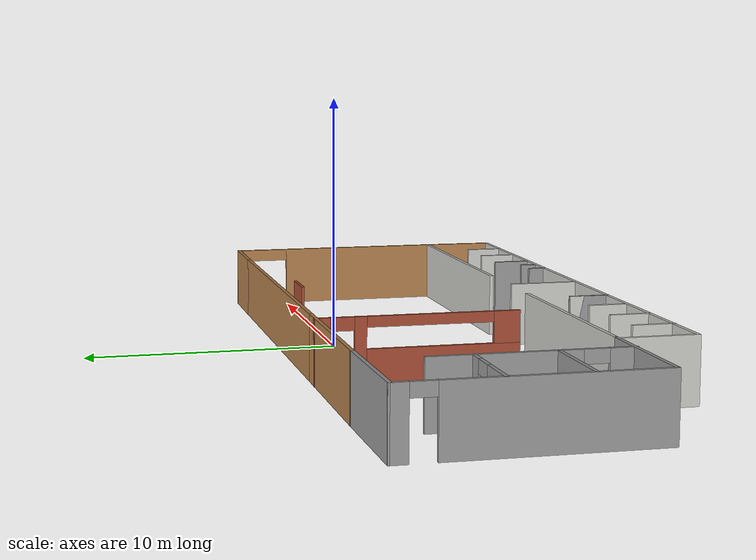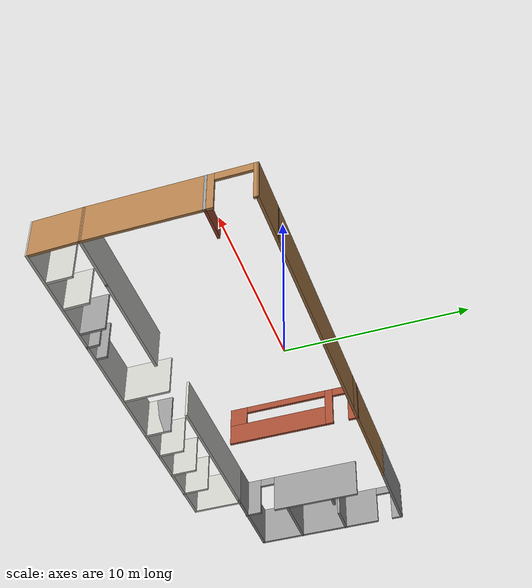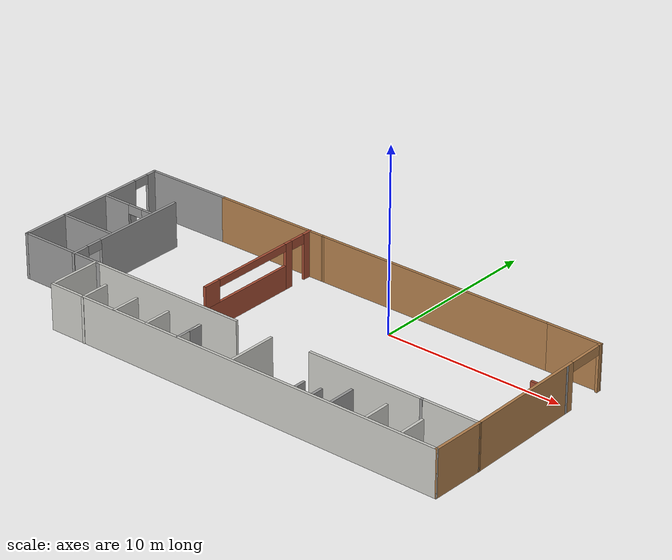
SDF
<?xml version='1.0'?>
<sdf version='1.6'>
  <model name='rest'>
    <pose frame=''>-3.19031 -3.86827 0 0 -0 0</pose>
    <link name='Wall_105'>
      <collision name='Wall_105_Collision'>
        <geometry>
          <box>
            <size>1.5 0.15 2.5</size>
          </box>
        </geometry>
        <pose frame=''>0 0 1.25 0 -0 0</pose>
      </collision>
      <visual name='Wall_105_Visual'>
        <pose frame=''>0 0 1.25 0 -0 0</pose>
        <geometry>
          <box>
            <size>1.5 0.15 2.5</size>
          </box>
        </geometry>
        <material>
          <script>
            <uri>file://media/materials/scripts/gazebo.material</uri>
            <name>Gazebo/CeilingTiled</name>
          </script>
          <ambient>1 1 1 1</ambient>
        </material>
        <meta>
          <layer>0</layer>
        </meta>
      </visual>
      <pose frame=''>9.84331 -5.22473 0 0 -0 1.5708</pose>
    </link>
    <link name='Wall_107'>
      <collision name='Wall_107_Collision'>
        <geometry>
          <box>
            <size>1.538 0.15 2.5</size>
          </box>
        </geometry>
        <pose frame=''>0 0 1.25 0 -0 0</pose>
      </collision>
      <visual name='Wall_107_Visual'>
        <pose frame=''>0 0 1.25 0 -0 0</pose>
        <geometry>
          <box>
            <size>1.538 0.15 2.5</size>
          </box>
        </geometry>
        <material>
          <script>
            <uri>file://media/materials/scripts/gazebo.material</uri>
            <name>Gazebo/CeilingTiled</name>
          </script>
          <ambient>1 1 1 1</ambient>
        </material>
        <meta>
          <layer>0</layer>
        </meta>
      </visual>
      <pose frame=''>11.8423 -5.24373 0 0 0 -1.5708</pose>
    </link>
    <link name='Wall_109'>
      <collision name='Wall_109_Collision'>
        <geometry>
          <box>
            <size>0.744777 0.15 2.5</size>
          </box>
        </geometry>
        <pose frame=''>0 0 1.25 0 -0 0</pose>
      </collision>
      <visual name='Wall_109_Visual'>
        <pose frame=''>0 0 1.25 0 -0 0</pose>
        <geometry>
          <box>
            <size>0.744777 0.15 2.5</size>
          </box>
        </geometry>
        <material>
          <script>
            <uri>file://media/materials/scripts/gazebo.material</uri>
            <name>Gazebo/Grey</name>
          </script>
          <ambient>1 1 1 1</ambient>
        </material>
        <meta>
          <layer>0</layer>
        </meta>
      </visual>
      <pose frame=''>6.76931 -5.68423 0 0 -0 1.5708</pose>
    </link>
    <link name='Wall_113'>
      <collision name='Wall_113_Collision'>
        <geometry>
          <box>
            <size>0.745 0.15 2.5</size>
          </box>
        </geometry>
        <pose frame=''>0 0 1.25 0 -0 0</pose>
      </collision>
      <visual name='Wall_113_Visual'>
        <pose frame=''>0 0 1.25 0 -0 0</pose>
        <geometry>
          <box>
            <size>0.745 0.15 2.5</size>
          </box>
        </geometry>
        <material>
          <script>
            <uri>file://media/materials/scripts/gazebo.material</uri>
            <name>Gazebo/Grey</name>
          </script>
          <ambient>1 1 1 1</ambient>
        </material>
        <meta>
          <layer>0</layer>
        </meta>
      </visual>
      <pose frame=''>5.76931 -5.68423 0 0 -0 1.5708</pose>
    </link>
    <link name='Wall_115'>
      <collision name='Wall_115_Collision'>
        <geometry>
          <box>
            <size>1.643 0.15 2.5</size>
          </box>
        </geometry>
        <pose frame=''>0 0 1.25 0 -0 0</pose>
      </collision>
      <visual name='Wall_115_Visual'>
        <pose frame=''>0 0 1.25 0 -0 0</pose>
        <geometry>
          <box>
            <size>1.643 0.15 2.5</size>
          </box>
        </geometry>
        <material>
          <script>
            <uri>file://media/materials/scripts/gazebo.material</uri>
            <name>Gazebo/CeilingTiled</name>
          </script>
          <ambient>1 1 1 1</ambient>
        </material>
        <meta>
          <layer>0</layer>
        </meta>
      </visual>
      <pose frame=''>-7.25669 -5.29623 0 0 0 -1.5708</pose>
    </link>
    <link name='Wall_117'>
      <collision name='Wall_117_Collision'>
        <geometry>
          <box>
            <size>1.59 0.15 2.5</size>
          </box>
        </geometry>
        <pose frame=''>0 0 1.25 0 -0 0</pose>
      </collision>
      <visual name='Wall_117_Visual'>
        <pose frame=''>0 0 1.25 0 -0 0</pose>
        <geometry>
          <box>
            <size>1.59 0.15 2.5</size>
          </box>
        </geometry>
        <material>
          <script>
            <uri>file://media/materials/scripts/gazebo.material</uri>
            <name>Gazebo/CeilingTiled</name>
          </script>
          <ambient>1 1 1 1</ambient>
        </material>
        <meta>
          <layer>0</layer>
        </meta>
      </visual>
      <pose frame=''>-5.25669 -5.26973 0 0 0 -1.5708</pose>
    </link>
    <link name='Wall_119'>
      <collision name='Wall_119_Collision'>
        <geometry>
          <box>
            <size>1.538 0.15 2.5</size>
          </box>
        </geometry>
        <pose frame=''>0 0 1.25 0 -0 0</pose>
      </collision>
      <visual name='Wall_119_Visual'>
        <pose frame=''>0 0 1.25 0 -0 0</pose>
        <geometry>
          <box>
            <size>1.538 0.15 2.5</size>
          </box>
        </geometry>
        <material>
          <script>
            <uri>file://media/materials/scripts/gazebo.material</uri>
            <name>Gazebo/CeilingTiled</name>
          </script>
          <ambient>1 1 1 1</ambient>
        </material>
        <meta>
          <layer>0</layer>
        </meta>
      </visual>
      <pose frame=''>-3.25669 -5.24373 0 0 0 -1.5708</pose>
    </link>
    <link name='Wall_121'>
      <collision name='Wall_121_Collision'>
        <geometry>
          <box>
            <size>1.59 0.15 2.5</size>
          </box>
        </geometry>
        <pose frame=''>0 0 1.25 0 -0 0</pose>
      </collision>
      <visual name='Wall_121_Visual'>
        <pose frame=''>0 0 1.25 0 -0 0</pose>
        <geometry>
          <box>
            <size>1.59 0.15 2.5</size>
          </box>
        </geometry>
        <material>
          <script>
            <uri>file://media/materials/scripts/gazebo.material</uri>
            <name>Gazebo/Grey</name>
          </script>
          <ambient>1 1 1 1</ambient>
        </material>
        <meta>
          <layer>0</layer>
        </meta>
      </visual>
      <pose frame=''>-1.25669 -5.26973 0 0 0 -1.5708</pose>
    </link>
    <link name='Wall_122'>
      <collision name='Wall_122_Collision'>
        <geometry>
          <box>
            <size>1.59 0.15 2.5</size>
          </box>
        </geometry>
        <pose frame=''>0 0 1.25 0 -0 0</pose>
      </collision>
      <visual name='Wall_122_Visual'>
        <pose frame=''>0 0 1.25 0 -0 0</pose>
        <geometry>
          <box>
            <size>1.59 0.15 2.5</size>
          </box>
        </geometry>
        <material>
          <script>
            <uri>file://media/materials/scripts/gazebo.material</uri>
            <name>Gazebo/CeilingTiled</name>
          </script>
          <ambient>1 1 1 1</ambient>
        </material>
        <meta>
          <layer>0</layer>
        </meta>
      </visual>
      <pose frame=''>-1.25669 -5.26973 0 0 -0 1.5708</pose>
    </link>
    <link name='Wall_125'>
      <collision name='Wall_125_Collision'>
        <geometry>
          <box>
            <size>4.79 0.15 2.5</size>
          </box>
        </geometry>
        <pose frame=''>0 0 1.25 0 -0 0</pose>
      </collision>
      <visual name='Wall_125_Visual'>
        <pose frame=''>0 0 1.25 0 -0 0</pose>
        <geometry>
          <box>
            <size>4.79 0.15 2.5</size>
          </box>
        </geometry>
        <material>
          <script>
            <uri>file://media/materials/scripts/gazebo.material</uri>
            <name>Gazebo/Grey</name>
          </script>
          <ambient>1 1 1 1</ambient>
        </material>
        <meta>
          <layer>0</layer>
        </meta>
      </visual>
      <pose frame=''>-11.5766 5.9975 0 0 0 -3.13393</pose>
    </link>
    <link name='Wall_126'>
      <pose frame=''>-13.8966 1.42972 0 0 0 -1.5708</pose>
      <visual name='Wall_126_Visual_0'>
        <pose frame=''>-4.29481 0 1.25 0 -0 0</pose>
        <geometry>
          <box>
            <size>0.660381 0.15 2.5</size>
          </box>
        </geometry>
        <material>
          <script>
            <uri>file://media/materials/scripts/gazebo.material</uri>
            <name>Gazebo/Grey</name>
          </script>
          <ambient>1 1 1 1</ambient>
        </material>
        <meta>
          <layer>0</layer>
        </meta>
      </visual>
      <collision name='Wall_126_Collision_0'>
        <geometry>
          <box>
            <size>0.660381 0.15 2.5</size>
          </box>
        </geometry>
        <pose frame=''>-4.29481 0 1.25 0 -0 0</pose>
      </collision>
      <visual name='Wall_126_Visual_1'>
        <pose frame=''>0.780191 0 1.25 0 -0 0</pose>
        <geometry>
          <box>
            <size>7.68962 0.15 2.5</size>
          </box>
        </geometry>
        <material>
          <script>
            <uri>file://media/materials/scripts/gazebo.material</uri>
            <name>Gazebo/Grey</name>
          </script>
          <ambient>1 1 1 1</ambient>
        </material>
        <meta>
          <layer>0</layer>
        </meta>
      </visual>
      <collision name='Wall_126_Collision_1'>
        <geometry>
          <box>
            <size>7.68962 0.15 2.5</size>
          </box>
        </geometry>
        <pose frame=''>0.780191 0 1.25 0 -0 0</pose>
      </collision>
      <visual name='Wall_126_Visual_2'>
        <pose frame=''>-3.51462 0 2.25 0 -0 0</pose>
        <geometry>
          <box>
            <size>0.9 0.15 0.5</size>
          </box>
        </geometry>
        <material>
          <script>
            <uri>file://media/materials/scripts/gazebo.material</uri>
            <name>Gazebo/Grey</name>
          </script>
          <ambient>1 1 1 1</ambient>
        </material>
        <meta>
          <layer>0</layer>
        </meta>
      </visual>
      <collision name='Wall_126_Collision_2'>
        <geometry>
          <box>
            <size>0.9 0.15 0.5</size>
          </box>
        </geometry>
        <pose frame=''>-3.51462 0 2.25 0 -0 0</pose>
      </collision>
    </link>
    <link name='Wall_128'>
      <collision name='Wall_128_Collision'>
        <geometry>
          <box>
            <size>5 0.15 2.5</size>
          </box>
        </geometry>
        <pose frame=''>0 0 1.25 0 -0 0</pose>
      </collision>
      <visual name='Wall_128_Visual'>
        <pose frame=''>0 0 1.25 0 -0 0</pose>
        <geometry>
          <box>
            <size>5 0.15 2.5</size>
          </box>
        </geometry>
        <material>
          <script>
            <uri>file://media/materials/scripts/gazebo.material</uri>
            <name>Gazebo/Grey</name>
          </script>
          <ambient>1 1 1 1</ambient>
        </material>
        <meta>
          <layer>0</layer>
        </meta>
      </visual>
      <pose frame=''>-11.4532 -3.11873 0 0 -0 3.14159</pose>
    </link>
    <link name='Wall_132'>
      <pose frame=''>-10.6853 0.397406 0 0 0 -1.5708</pose>
      <visual name='Wall_132_Visual_0'>
        <pose frame=''>-0.952875 0 1.25 0 -0 0</pose>
        <geometry>
          <box>
            <size>5.34425 0.15 2.5</size>
          </box>
        </geometry>
        <material>
          <script>
            <uri>file://media/materials/scripts/gazebo.material</uri>
            <name>Gazebo/Grey</name>
          </script>
          <ambient>1 1 1 1</ambient>
        </material>
        <meta>
          <layer>0</layer>
        </meta>
      </visual>
      <collision name='Wall_132_Collision_0'>
        <geometry>
          <box>
            <size>5.34425 0.15 2.5</size>
          </box>
        </geometry>
        <pose frame=''>-0.952875 0 1.25 0 -0 0</pose>
      </collision>
      <visual name='Wall_132_Visual_1'>
        <pose frame=''>3.12213 0 1.25 0 -0 0</pose>
        <geometry>
          <box>
            <size>1.00575 0.15 2.5</size>
          </box>
        </geometry>
        <material>
          <script>
            <uri>file://media/materials/scripts/gazebo.material</uri>
            <name>Gazebo/Grey</name>
          </script>
          <ambient>1 1 1 1</ambient>
        </material>
        <meta>
          <layer>0</layer>
        </meta>
      </visual>
      <collision name='Wall_132_Collision_1'>
        <geometry>
          <box>
            <size>1.00575 0.15 2.5</size>
          </box>
        </geometry>
        <pose frame=''>3.12213 0 1.25 0 -0 0</pose>
      </collision>
      <visual name='Wall_132_Visual_2'>
        <pose frame=''>2.16925 0 2.25 0 -0 0</pose>
        <geometry>
          <box>
            <size>0.9 0.15 0.5</size>
          </box>
        </geometry>
        <material>
          <script>
            <uri>file://media/materials/scripts/gazebo.material</uri>
            <name>Gazebo/Grey</name>
          </script>
          <ambient>1 1 1 1</ambient>
        </material>
        <meta>
          <layer>0</layer>
        </meta>
      </visual>
      <collision name='Wall_132_Collision_2'>
        <geometry>
          <box>
            <size>0.9 0.15 0.5</size>
          </box>
        </geometry>
        <pose frame=''>2.16925 0 2.25 0 -0 0</pose>
      </collision>
    </link>
    <link name='Wall_134'>
      <collision name='Wall_134_Collision'>
        <geometry>
          <box>
            <size>3.25 0.15 2.5</size>
          </box>
        </geometry>
        <pose frame=''>0 0 1.25 0 -0 0</pose>
      </collision>
      <visual name='Wall_134_Visual'>
        <pose frame=''>0 0 1.25 0 -0 0</pose>
        <geometry>
          <box>
            <size>3.25 0.15 2.5</size>
          </box>
        </geometry>
        <material>
          <script>
            <uri>file://media/materials/scripts/gazebo.material</uri>
            <name>Gazebo/Grey</name>
          </script>
          <ambient>1 1 1 1</ambient>
        </material>
        <meta>
          <layer>0</layer>
        </meta>
      </visual>
      <pose frame=''>-12.3185 -0.49507 0 0 -0 0</pose>
    </link>
    <link name='Wall_137'>
      <pose frame=''>-12.336 2.3733 0 0 -0 0</pose>
      <visual name='Wall_137_Visual_0'>
        <pose frame=''>-0.771842 0 1.25 0 -0 0</pose>
        <geometry>
          <box>
            <size>1.70632 0.15 2.5</size>
          </box>
        </geometry>
        <material>
          <script>
            <uri>file://media/materials/scripts/gazebo.material</uri>
            <name>Gazebo/Grey</name>
          </script>
          <ambient>1 1 1 1</ambient>
        </material>
        <meta>
          <layer>0</layer>
        </meta>
      </visual>
      <collision name='Wall_137_Collision_0'>
        <geometry>
          <box>
            <size>1.70632 0.15 2.5</size>
          </box>
        </geometry>
        <pose frame=''>-0.771842 0 1.25 0 -0 0</pose>
      </collision>
      <visual name='Wall_137_Visual_1'>
        <pose frame=''>1.30316 0 1.25 0 -0 0</pose>
        <geometry>
          <box>
            <size>0.643683 0.15 2.5</size>
          </box>
        </geometry>
        <material>
          <script>
            <uri>file://media/materials/scripts/gazebo.material</uri>
            <name>Gazebo/Grey</name>
          </script>
          <ambient>1 1 1 1</ambient>
        </material>
        <meta>
          <layer>0</layer>
        </meta>
      </visual>
      <collision name='Wall_137_Collision_1'>
        <geometry>
          <box>
            <size>0.643683 0.15 2.5</size>
          </box>
        </geometry>
        <pose frame=''>1.30316 0 1.25 0 -0 0</pose>
      </collision>
      <visual name='Wall_137_Visual_2'>
        <pose frame=''>0.531317 0 2.25 0 -0 0</pose>
        <geometry>
          <box>
            <size>0.9 0.15 0.5</size>
          </box>
        </geometry>
        <material>
          <script>
            <uri>file://media/materials/scripts/gazebo.material</uri>
            <name>Gazebo/Grey</name>
          </script>
          <ambient>1 1 1 1</ambient>
        </material>
        <meta>
          <layer>0</layer>
        </meta>
      </visual>
      <collision name='Wall_137_Collision_2'>
        <geometry>
          <box>
            <size>0.9 0.15 0.5</size>
          </box>
        </geometry>
        <pose frame=''>0.531317 0 2.25 0 -0 0</pose>
      </collision>
    </link>
    <link name='Wall_3'>
      <collision name='Wall_3_Collision'>
        <geometry>
          <box>
            <size>13.697 0.15 2.5</size>
          </box>
        </geometry>
        <pose frame=''>0 0 1.25 0 -0 0</pose>
      </collision>
      <visual name='Wall_3_Visual'>
        <pose frame=''>0 0 1.25 0 -0 0</pose>
        <geometry>
          <box>
            <size>13.697 0.15 2.5</size>
          </box>
        </geometry>
        <material>
          <script>
            <uri>file://media/materials/scripts/gazebo.material</uri>
            <name>Gazebo/Wood</name>
          </script>
          <ambient>1 1 1 1</ambient>
        </material>
        <meta>
          <layer>0</layer>
        </meta>
      </visual>
      <pose frame=''>4.11681 6.02877 0 0 0 -3.1396</pose>
    </link>
    <link name='Wall_45'>
      <collision name='Wall_45_Collision'>
        <geometry>
          <box>
            <size>3.1 0.15 2.5</size>
          </box>
        </geometry>
        <pose frame=''>0 0 1.25 0 -0 0</pose>
      </collision>
      <visual name='Wall_45_Visual'>
        <pose frame=''>0 0 1.25 0 -0 0</pose>
        <geometry>
          <box>
            <size>3.1 0.15 2.5</size>
          </box>
        </geometry>
        <material>
          <script>
            <uri>file://media/materials/scripts/gazebo.material</uri>
            <name>Gazebo/Wood</name>
          </script>
          <ambient>1 1 1 1</ambient>
        </material>
        <meta>
          <layer>0</layer>
        </meta>
      </visual>
      <pose frame=''>12.3653 6.04227 0 0 -0 0</pose>
    </link>
    <link name='Wall_56'>
      <collision name='Wall_56_Collision'>
        <geometry>
          <box>
            <size>0.15 0.15 2.5</size>
          </box>
        </geometry>
        <pose frame=''>0 0 1.25 0 -0 0</pose>
      </collision>
      <visual name='Wall_56_Visual'>
        <pose frame=''>0 0 1.25 0 -0 0</pose>
        <geometry>
          <box>
            <size>0.15 0.15 2.5</size>
          </box>
        </geometry>
        <material>
          <script>
            <uri>file://media/materials/scripts/gazebo.material</uri>
            <name>Gazebo/Grey</name>
          </script>
          <ambient>1 1 1 1</ambient>
        </material>
        <meta>
          <layer>0</layer>
        </meta>
      </visual>
      <pose frame=''>10.7303 -3.13173 0 0 -0 0</pose>
    </link>
    <link name='Wall_67'>
      <collision name='Wall_67_Collision'>
        <geometry>
          <box>
            <size>6.75 0.15 2.5</size>
          </box>
        </geometry>
        <pose frame=''>0 0 1.25 0 -0 0</pose>
      </collision>
      <visual name='Wall_67_Visual'>
        <pose frame=''>0 0 1.25 0 -0 0</pose>
        <geometry>
          <box>
            <size>6.75 0.15 2.5</size>
          </box>
        </geometry>
        <material>
          <script>
            <uri>file://media/materials/scripts/gazebo.material</uri>
            <name>Gazebo/Wood</name>
          </script>
          <ambient>1 1 1 1</ambient>
        </material>
        <meta>
          <layer>0</layer>
        </meta>
      </visual>
      <pose frame=''>-5.95669 6.01527 0 0 -0 3.14159</pose>
    </link>
    <link name='Wall_73'>
      <collision name='Wall_73_Collision'>
        <geometry>
          <box>
            <size>0.15 0.15 2.5</size>
          </box>
        </geometry>
        <pose frame=''>0 0 1.25 0 -0 0</pose>
      </collision>
      <visual name='Wall_73_Visual'>
        <pose frame=''>0 0 1.25 0 -0 0</pose>
        <geometry>
          <box>
            <size>0.15 0.15 2.5</size>
          </box>
        </geometry>
        <material>
          <script>
            <uri>file://media/materials/scripts/gazebo.material</uri>
            <name>Gazebo/Grey</name>
          </script>
          <ambient>1 1 1 1</ambient>
        </material>
        <meta>
          <layer>0</layer>
        </meta>
      </visual>
      <pose frame=''>13.8608 3.37641 0 0 -0 0</pose>
    </link>
    <link name='Wall_76'>
      <pose frame=''>13.868 1.46177 0 0 0 -1.56474</pose>
      <visual name='Wall_76_Visual_0'>
        <pose frame=''>-4.52154 0 1.25 0 -0 0</pose>
        <geometry>
          <box>
            <size>0.268095 0.15 2.5</size>
          </box>
        </geometry>
        <material>
          <script>
            <uri>file://media/materials/scripts/gazebo.material</uri>
            <name>Gazebo/Wood</name>
          </script>
          <ambient>1 1 1 1</ambient>
        </material>
        <meta>
          <layer>0</layer>
        </meta>
      </visual>
      <collision name='Wall_76_Collision_0'>
        <geometry>
          <box>
            <size>0.268095 0.15 2.5</size>
          </box>
        </geometry>
        <pose frame=''>-4.52154 0 1.25 0 -0 0</pose>
      </collision>
      <visual name='Wall_76_Visual_1'>
        <pose frame=''>1.14378 0 1.25 0 -0 0</pose>
        <geometry>
          <box>
            <size>7.02361 0.15 2.5</size>
          </box>
        </geometry>
        <material>
          <script>
            <uri>file://media/materials/scripts/gazebo.material</uri>
            <name>Gazebo/Wood</name>
          </script>
          <ambient>1 1 1 1</ambient>
        </material>
        <meta>
          <layer>0</layer>
        </meta>
      </visual>
      <collision name='Wall_76_Collision_1'>
        <geometry>
          <box>
            <size>7.02361 0.15 2.5</size>
          </box>
        </geometry>
        <pose frame=''>1.14378 0 1.25 0 -0 0</pose>
      </collision>
      <visual name='Wall_76_Visual_2'>
        <pose frame=''>-3.37776 0 2.25 0 -0 0</pose>
        <geometry>
          <box>
            <size>2.01946 0.15 0.5</size>
          </box>
        </geometry>
        <material>
          <script>
            <uri>file://media/materials/scripts/gazebo.material</uri>
            <name>Gazebo/Wood</name>
          </script>
          <ambient>1 1 1 1</ambient>
        </material>
        <meta>
          <layer>0</layer>
        </meta>
      </visual>
      <collision name='Wall_76_Collision_2'>
        <geometry>
          <box>
            <size>2.01946 0.15 0.5</size>
          </box>
        </geometry>
        <pose frame=''>-3.37776 0 2.25 0 -0 0</pose>
      </collision>
    </link>
    <link name='Wall_78'>
      <pose frame=''>-3.55923 2.22695 0 0 0 -1.5708</pose>
      <visual name='Wall_78_Visual_0'>
        <pose frame=''>-3.58241 0 1.25 0 -0 0</pose>
        <geometry>
          <box>
            <size>0.585178 0.15 2.5</size>
          </box>
        </geometry>
        <material>
          <script>
            <uri>file://media/materials/scripts/gazebo.material</uri>
            <name>Gazebo/Bricks</name>
          </script>
          <ambient>1 1 1 1</ambient>
        </material>
        <meta>
          <layer>0</layer>
        </meta>
      </visual>
      <collision name='Wall_78_Collision_0'>
        <geometry>
          <box>
            <size>0.585178 0.15 2.5</size>
          </box>
        </geometry>
        <pose frame=''>-3.58241 0 1.25 0 -0 0</pose>
      </collision>
      <visual name='Wall_78_Visual_1'>
        <pose frame=''>-2.16112 0 1.25 0 -0 0</pose>
        <geometry>
          <box>
            <size>0.457397 0.15 2.5</size>
          </box>
        </geometry>
        <material>
          <script>
            <uri>file://media/materials/scripts/gazebo.material</uri>
            <name>Gazebo/Bricks</name>
          </script>
          <ambient>1 1 1 1</ambient>
        </material>
        <meta>
          <layer>0</layer>
        </meta>
      </visual>
      <collision name='Wall_78_Collision_1'>
        <geometry>
          <box>
            <size>0.457397 0.15 2.5</size>
          </box>
        </geometry>
        <pose frame=''>-2.16112 0 1.25 0 -0 0</pose>
      </collision>
      <visual name='Wall_78_Visual_2'>
        <pose frame=''>0.971288 0 0.65 0 -0 0</pose>
        <geometry>
          <box>
            <size>5.80743 0.15 1.3</size>
          </box>
        </geometry>
        <material>
          <script>
            <uri>file://media/materials/scripts/gazebo.material</uri>
            <name>Gazebo/Bricks</name>
          </script>
          <ambient>1 1 1 1</ambient>
        </material>
        <meta>
          <layer>0</layer>
        </meta>
      </visual>
      <collision name='Wall_78_Collision_2'>
        <geometry>
          <box>
            <size>5.80743 0.15 1.3</size>
          </box>
        </geometry>
        <pose frame=''>0.971288 0 0.65 0 -0 0</pose>
      </collision>
      <visual name='Wall_78_Visual_3'>
        <pose frame=''>3.37129 0 1.9 0 -0 0</pose>
        <geometry>
          <box>
            <size>1.00743 0.15 1.2</size>
          </box>
        </geometry>
        <material>
          <script>
            <uri>file://media/materials/scripts/gazebo.material</uri>
            <name>Gazebo/Bricks</name>
          </script>
          <ambient>1 1 1 1</ambient>
        </material>
        <meta>
          <layer>0</layer>
        </meta>
      </visual>
      <collision name='Wall_78_Collision_3'>
        <geometry>
          <box>
            <size>1.00743 0.15 1.2</size>
          </box>
        </geometry>
        <pose frame=''>3.37129 0 1.9 0 -0 0</pose>
      </collision>
      <visual name='Wall_78_Visual_4'>
        <pose frame=''>-2.83982 0 2.25 0 -0 0</pose>
        <geometry>
          <box>
            <size>0.9 0.15 0.5</size>
          </box>
        </geometry>
        <material>
          <script>
            <uri>file://media/materials/scripts/gazebo.material</uri>
            <name>Gazebo/Bricks</name>
          </script>
          <ambient>1 1 1 1</ambient>
        </material>
        <meta>
          <layer>0</layer>
        </meta>
      </visual>
      <collision name='Wall_78_Collision_4'>
        <geometry>
          <box>
            <size>0.9 0.15 0.5</size>
          </box>
        </geometry>
        <pose frame=''>-2.83982 0 2.25 0 -0 0</pose>
      </collision>
      <visual name='Wall_78_Visual_5'>
        <pose frame=''>0.467575 0 2.3 0 -0 0</pose>
        <geometry>
          <box>
            <size>4.8 0.15 0.4</size>
          </box>
        </geometry>
        <material>
          <script>
            <uri>file://media/materials/scripts/gazebo.material</uri>
            <name>Gazebo/Bricks</name>
          </script>
          <ambient>1 1 1 1</ambient>
        </material>
        <meta>
          <layer>0</layer>
        </meta>
      </visual>
      <collision name='Wall_78_Collision_5'>
        <geometry>
          <box>
            <size>4.8 0.15 0.4</size>
          </box>
        </geometry>
        <pose frame=''>0.467575 0 2.3 0 -0 0</pose>
      </collision>
    </link>
    <link name='Wall_80'>
      <collision name='Wall_80_Collision'>
        <geometry>
          <box>
            <size>1.99 0.14 1</size>
          </box>
        </geometry>
        <pose frame=''>0 0 0.5 0 -0 0</pose>
      </collision>
      <visual name='Wall_80_Visual'>
        <pose frame=''>0 0 0.5 0 -0 0</pose>
        <geometry>
          <box>
            <size>1.99 0.14 1</size>
          </box>
        </geometry>
        <material>
          <script>
            <uri>file://media/materials/scripts/gazebo.material</uri>
            <name>Gazebo/Bricks</name>
          </script>
          <ambient>1 1 1 1</ambient>
        </material>
        <meta>
          <layer>0</layer>
        </meta>
      </visual>
      <pose frame=''>12.9358 3.3939 0 0 -0 3.14159</pose>
    </link>
    <link name='Wall_84'>
      <collision name='Wall_84_Collision'>
        <geometry>
          <box>
            <size>3.04349 0.15 2.5</size>
          </box>
        </geometry>
        <pose frame=''>0 0 1.25 0 -0 0</pose>
      </collision>
      <visual name='Wall_84_Visual'>
        <pose frame=''>0 0 1.25 0 -0 0</pose>
        <geometry>
          <box>
            <size>3.04349 0.15 2.5</size>
          </box>
        </geometry>
        <material>
          <script>
            <uri>file://media/materials/scripts/gazebo.material</uri>
            <name>Gazebo/CeilingTiled</name>
          </script>
          <ambient>1 1 1 1</ambient>
        </material>
        <meta>
          <layer>0</layer>
        </meta>
      </visual>
      <pose frame=''>-9.25669 -4.57798 0 0 0 -1.5708</pose>
    </link>
    <link name='Wall_85'>
      <collision name='Wall_85_Collision'>
        <geometry>
          <box>
            <size>23.25 0.15 2.5</size>
          </box>
        </geometry>
        <pose frame=''>0 0 1.25 0 -0 0</pose>
      </collision>
      <visual name='Wall_85_Visual'>
        <pose frame=''>0 0 1.25 0 -0 0</pose>
        <geometry>
          <box>
            <size>23.25 0.15 2.5</size>
          </box>
        </geometry>
        <material>
          <script>
            <uri>file://media/materials/scripts/gazebo.material</uri>
            <name>Gazebo/CeilingTiled</name>
          </script>
          <ambient>1 1 1 1</ambient>
        </material>
        <meta>
          <layer>0</layer>
        </meta>
      </visual>
      <pose frame=''>2.29331 -6.02473 0 0 -0 0</pose>
    </link>
    <link name='Wall_86'>
      <collision name='Wall_86_Collision'>
        <geometry>
          <box>
            <size>3.05647 0.15 2.5</size>
          </box>
        </geometry>
        <pose frame=''>0 0 1.25 0 -0 0</pose>
      </collision>
      <visual name='Wall_86_Visual'>
        <pose frame=''>0 0 1.25 0 -0 0</pose>
        <geometry>
          <box>
            <size>3.05647 0.15 2.5</size>
          </box>
        </geometry>
        <material>
          <script>
            <uri>file://media/materials/scripts/gazebo.material</uri>
            <name>Gazebo/Wood</name>
          </script>
          <ambient>1 1 1 1</ambient>
        </material>
        <meta>
          <layer>0</layer>
        </meta>
      </visual>
      <pose frame=''>13.8695 -4.57173 0 0 -0 1.55274</pose>
    </link>
    <link name='Wall_93'>
      <collision name='Wall_93_Collision'>
        <geometry>
          <box>
            <size>8.93004 0.15 2.5</size>
          </box>
        </geometry>
        <pose frame=''>0 0 1.25 0 -0 0</pose>
      </collision>
      <visual name='Wall_93_Visual'>
        <pose frame=''>0 0 1.25 0 -0 0</pose>
        <geometry>
          <box>
            <size>8.93004 0.15 2.5</size>
          </box>
        </geometry>
        <material>
          <script>
            <uri>file://media/materials/scripts/gazebo.material</uri>
            <name>Gazebo/CeilingTiled</name>
          </script>
          <ambient>1 1 1 1</ambient>
        </material>
        <meta>
          <layer>0</layer>
        </meta>
      </visual>
      <pose frame=''>-4.65571 -3.11873 0 0 -0 3.14159</pose>
    </link>
    <link name='Wall_95'>
      <collision name='Wall_95_Collision'>
        <geometry>
          <box>
            <size>9.75 0.15 2.5</size>
          </box>
        </geometry>
        <pose frame=''>0 0 1.25 0 -0 0</pose>
      </collision>
      <visual name='Wall_95_Visual'>
        <pose frame=''>0 0 1.25 0 -0 0</pose>
        <geometry>
          <box>
            <size>9.75 0.15 2.5</size>
          </box>
        </geometry>
        <material>
          <script>
            <uri>file://media/materials/scripts/gazebo.material</uri>
            <name>Gazebo/CeilingTiled</name>
          </script>
          <ambient>1 1 1 1</ambient>
        </material>
        <meta>
          <layer>0</layer>
        </meta>
      </visual>
      <pose frame=''>9.09578 -3.11873 0 0 -0 0</pose>
    </link>
    <link name='Wall_97'>
      <collision name='Wall_97_Collision'>
        <geometry>
          <box>
            <size>2.75 0.15 2.5</size>
          </box>
        </geometry>
        <pose frame=''>0 0 1.25 0 -0 0</pose>
      </collision>
      <visual name='Wall_97_Visual'>
        <pose frame=''>0 0 1.25 0 -0 0</pose>
        <geometry>
          <box>
            <size>2.75 0.15 2.5</size>
          </box>
        </geometry>
        <material>
          <script>
            <uri>file://media/materials/scripts/gazebo.material</uri>
            <name>Gazebo/CeilingTiled</name>
          </script>
          <ambient>1 1 1 1</ambient>
        </material>
        <meta>
          <layer>0</layer>
        </meta>
      </visual>
      <pose frame=''>2.01248 -4.59348 0 0 0 -1.5708</pose>
    </link>
    <link name='Wall_99'>
      <collision name='Wall_99_Collision'>
        <geometry>
          <box>
            <size>1.5 0.15 2.5</size>
          </box>
        </geometry>
        <pose frame=''>0 0 1.25 0 -0 0</pose>
      </collision>
      <visual name='Wall_99_Visual'>
        <pose frame=''>0 0 1.25 0 -0 0</pose>
        <geometry>
          <box>
            <size>1.5 0.15 2.5</size>
          </box>
        </geometry>
        <material>
          <script>
            <uri>file://media/materials/scripts/gazebo.material</uri>
            <name>Gazebo/Grey</name>
          </script>
          <ambient>1 1 1 1</ambient>
        </material>
        <meta>
          <layer>0</layer>
        </meta>
      </visual>
      <pose frame=''>7.84331 -5.22473 0 0 -0 1.5708</pose>
    </link>
    <static>1</static>
  </model>
</sdf>
